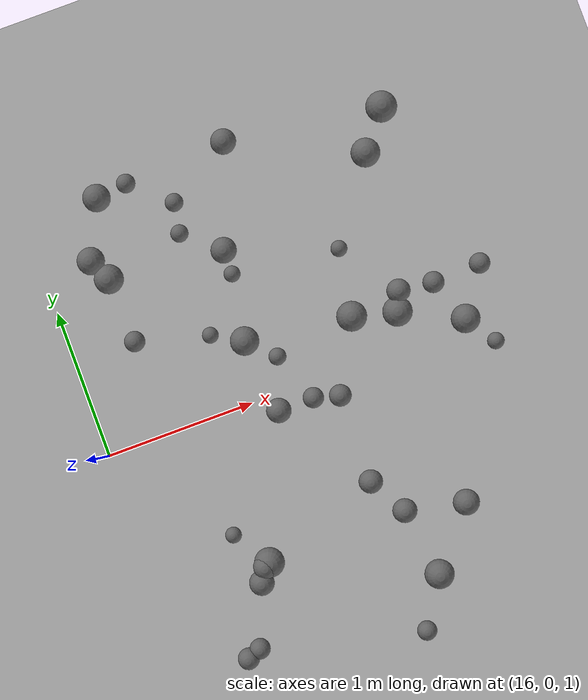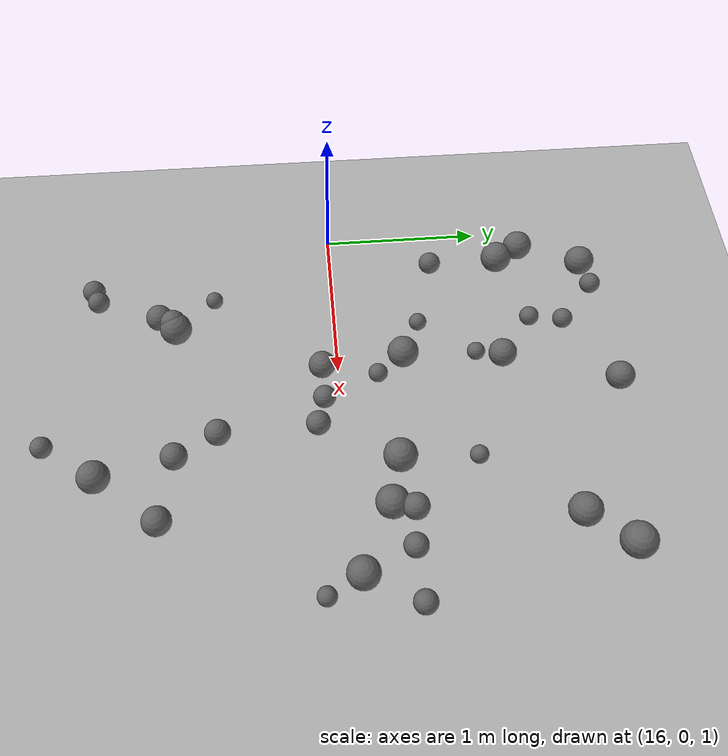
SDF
<sdf version="1.8">
 <world name="extreme_disturbance_parkour">
  <model name="ground_plane">
   <static>true</static>
   <link name="link">
    <collision name="collision">
     <geometry><plane><normal>0 0 1</normal><size>100 100</size></plane></geometry>
     <surface><friction><ode><mu>1.5</mu><mu2>1.5</mu2></ode></friction></surface>
    </collision>
    <visual name="visual">
     <geometry><plane><normal>0 0 1</normal><size>100 100</size></plane></geometry>
     <material><ambient>0.7 0.7 0.7 1</ambient><diffuse>0.7 0.7 0.7 1</diffuse></material>
    </visual>
   </link>
  </model>
  <model name="stone_125">
   <static>true</static>
   <pose>17.5372 -0.1519 1.3933 0.0700 -0.1000 0.0000</pose>
   <link name="link">
    <collision name="collision">
     <geometry><sphere><radius>0.0705</radius></sphere></geometry>
     <surface><friction><ode><mu>100.0</mu><mu2>100.0</mu2></ode></friction></surface>
    </collision>
    <visual name="visual">
     <geometry><sphere><radius>0.0705</radius></sphere></geometry>
     <material><ambient>0.3 0.3 0.3 1</ambient><diffuse>0.4 0.4 0.4 1</diffuse></material>
    </visual>
   </link>
  </model>
  <model name="stone_128">
   <static>true</static>
   <pose>17.8381 0.7030 1.5079 0.0700 -0.1000 0.0000</pose>
   <link name="link">
    <collision name="collision">
     <geometry><sphere><radius>0.0517</radius></sphere></geometry>
     <surface><friction><ode><mu>100.0</mu><mu2>100.0</mu2></ode></friction></surface>
    </collision>
    <visual name="visual">
     <geometry><sphere><radius>0.0517</radius></sphere></geometry>
     <material><ambient>0.3 0.3 0.3 1</ambient><diffuse>0.4 0.4 0.4 1</diffuse></material>
    </visual>
   </link>
  </model>
  <model name="stone_129">
   <static>true</static>
   <pose>16.4161 -1.5286 1.1841 0.0700 -0.1000 0.0000</pose>
   <link name="link">
    <collision name="collision">
     <geometry><sphere><radius>0.0706</radius></sphere></geometry>
     <surface><friction><ode><mu>100.0</mu><mu2>100.0</mu2></ode></friction></surface>
    </collision>
    <visual name="visual">
     <geometry><sphere><radius>0.0706</radius></sphere></geometry>
     <material><ambient>0.3 0.3 0.3 1</ambient><diffuse>0.4 0.4 0.4 1</diffuse></material>
    </visual>
   </link>
  </model>
  <model name="stone_130">
   <static>true</static>
   <pose>16.7372 1.5534 1.4489 0.0700 -0.1000 0.0000</pose>
   <link name="link">
    <collision name="collision">
     <geometry><sphere><radius>0.0604</radius></sphere></geometry>
     <surface><friction><ode><mu>100.0</mu><mu2>100.0</mu2></ode></friction></surface>
    </collision>
    <visual name="visual">
     <geometry><sphere><radius>0.0604</radius></sphere></geometry>
     <material><ambient>0.3 0.3 0.3 1</ambient><diffuse>0.4 0.4 0.4 1</diffuse></material>
    </visual>
   </link>
  </model>
  <model name="stone_132">
   <static>true</static>
   <pose>17.5319 -0.7269 1.3368 0.0700 -0.1000 0.0000</pose>
   <link name="link">
    <collision name="collision">
     <geometry><sphere><radius>0.0765</radius></sphere></geometry>
     <surface><friction><ode><mu>100.0</mu><mu2>100.0</mu2></ode></friction></surface>
    </collision>
    <visual name="visual">
     <geometry><sphere><radius>0.0765</radius></sphere></geometry>
     <material><ambient>0.3 0.3 0.3 1</ambient><diffuse>0.4 0.4 0.4 1</diffuse></material>
    </visual>
   </link>
  </model>
  <model name="stone_133">
   <static>true</static>
   <pose>17.7385 -1.4266 1.2926 0.0700 -0.1000 0.0000</pose>
   <link name="link">
    <collision name="collision">
     <geometry><sphere><radius>0.0943</radius></sphere></geometry>
     <surface><friction><ode><mu>100.0</mu><mu2>100.0</mu2></ode></friction></surface>
    </collision>
    <visual name="visual">
     <geometry><sphere><radius>0.0943</radius></sphere></geometry>
     <material><ambient>0.3 0.3 0.3 1</ambient><diffuse>0.4 0.4 0.4 1</diffuse></material>
    </visual>
   </link>
  </model>
  <model name="stone_138">
   <static>true</static>
   <pose>18.0961 0.3327 1.4797 0.0700 -0.1000 0.0000</pose>
   <link name="link">
    <collision name="collision">
     <geometry><sphere><radius>0.0742</radius></sphere></geometry>
     <surface><friction><ode><mu>100.0</mu><mu2>100.0</mu2></ode></friction></surface>
    </collision>
    <visual name="visual">
     <geometry><sphere><radius>0.0742</radius></sphere></geometry>
     <material><ambient>0.3 0.3 0.3 1</ambient><diffuse>0.4 0.4 0.4 1</diffuse></material>
    </visual>
   </link>
  </model>
  <model name="stone_139">
   <static>true</static>
   <pose>16.9438 1.1440 1.4445 0.0700 -0.1000 0.0000</pose>
   <link name="link">
    <collision name="collision">
     <geometry><sphere><radius>0.0567</radius></sphere></geometry>
     <surface><friction><ode><mu>100.0</mu><mu2>100.0</mu2></ode></friction></surface>
    </collision>
    <visual name="visual">
     <geometry><sphere><radius>0.0567</radius></sphere></geometry>
     <material><ambient>0.3 0.3 0.3 1</ambient><diffuse>0.4 0.4 0.4 1</diffuse></material>
    </visual>
   </link>
  </model>
  <model name="stone_141">
   <static>true</static>
   <pose>17.3973 1.5821 1.4847 0.0700 -0.1000 0.0000</pose>
   <link name="link">
    <collision name="collision">
     <geometry><sphere><radius>0.0809</radius></sphere></geometry>
     <surface><friction><ode><mu>100.0</mu><mu2>100.0</mu2></ode></friction></surface>
    </collision>
    <visual name="visual">
     <geometry><sphere><radius>0.0809</radius></sphere></geometry>
     <material><ambient>0.3 0.3 0.3 1</ambient><diffuse>0.4 0.4 0.4 1</diffuse></material>
    </visual>
   </link>
  </model>
  <model name="stone_142">
   <static>true</static>
   <pose>17.0930 0.3772 1.3659 0.0700 -0.1000 0.0000</pose>
   <link name="link">
    <collision name="collision">
     <geometry><sphere><radius>0.0926</radius></sphere></geometry>
     <surface><friction><ode><mu>100.0</mu><mu2>100.0</mu2></ode></friction></surface>
    </collision>
    <visual name="visual">
     <geometry><sphere><radius>0.0926</radius></sphere></geometry>
     <material><ambient>0.3 0.3 0.3 1</ambient><diffuse>0.4 0.4 0.4 1</diffuse></material>
    </visual>
   </link>
  </model>
  <model name="stone_144">
   <static>true</static>
   <pose>18.3139 0.3057 1.5037 0.0700 -0.1000 0.0000</pose>
   <link name="link">
    <collision name="collision">
     <geometry><sphere><radius>0.0674</radius></sphere></geometry>
     <surface><friction><ode><mu>100.0</mu><mu2>100.0</mu2></ode></friction></surface>
    </collision>
    <visual name="visual">
     <geometry><sphere><radius>0.0674</radius></sphere></geometry>
     <material><ambient>0.3 0.3 0.3 1</ambient><diffuse>0.4 0.4 0.4 1</diffuse></material>
    </visual>
   </link>
  </model>
  <model name="stone_148">
   <static>true</static>
   <pose>17.7744 0.2873 1.4189 0.0700 -0.1000 0.0000</pose>
   <link name="link">
    <collision name="collision">
     <geometry><sphere><radius>0.0958</radius></sphere></geometry>
     <surface><friction><ode><mu>100.0</mu><mu2>100.0</mu2></ode></friction></surface>
    </collision>
    <visual name="visual">
     <geometry><sphere><radius>0.0958</radius></sphere></geometry>
     <material><ambient>0.3 0.3 0.3 1</ambient><diffuse>0.4 0.4 0.4 1</diffuse></material>
    </visual>
   </link>
  </model>
  <model name="stone_149">
   <static>true</static>
   <pose>17.3740 -0.1066 1.3929 0.0700 -0.1000 0.0000</pose>
   <link name="link">
    <collision name="collision">
     <geometry><sphere><radius>0.0663</radius></sphere></geometry>
     <surface><friction><ode><mu>100.0</mu><mu2>100.0</mu2></ode></friction></surface>
    </collision>
    <visual name="visual">
     <geometry><sphere><radius>0.0663</radius></sphere></geometry>
     <material><ambient>0.3 0.3 0.3 1</ambient><diffuse>0.4 0.4 0.4 1</diffuse></material>
    </visual>
   </link>
  </model>
  <model name="stone_150">
   <static>true</static>
   <pose>17.1665 0.9540 1.4162 0.0700 -0.1000 0.0000</pose>
   <link name="link">
    <collision name="collision">
     <geometry><sphere><radius>0.0824</radius></sphere></geometry>
     <surface><friction><ode><mu>100.0</mu><mu2>100.0</mu2></ode></friction></surface>
    </collision>
    <visual name="visual">
     <geometry><sphere><radius>0.0824</radius></sphere></geometry>
     <material><ambient>0.3 0.3 0.3 1</ambient><diffuse>0.4 0.4 0.4 1</diffuse></material>
    </visual>
   </link>
  </model>
  <model name="stone_169">
   <static>true</static>
   <pose>16.5063 -1.4921 1.1936 0.0700 -0.1000 0.0000</pose>
   <link name="link">
    <collision name="collision">
     <geometry><sphere><radius>0.0670</radius></sphere></geometry>
     <surface><friction><ode><mu>100.0</mu><mu2>100.0</mu2></ode></friction></surface>
    </collision>
    <visual name="visual">
     <geometry><sphere><radius>0.0670</radius></sphere></geometry>
     <material><ambient>0.3 0.3 0.3 1</ambient><diffuse>0.4 0.4 0.4 1</diffuse></material>
    </visual>
   </link>
  </model>
  <model name="stone_170">
   <static>true</static>
   <pose>17.1642 0.7920 1.4467 0.0700 -0.1000 0.0000</pose>
   <link name="link">
    <collision name="collision">
     <geometry><sphere><radius>0.0523</radius></sphere></geometry>
     <surface><friction><ode><mu>100.0</mu><mu2>100.0</mu2></ode></friction></surface>
    </collision>
    <visual name="visual">
     <geometry><sphere><radius>0.0523</radius></sphere></geometry>
     <material><ambient>0.3 0.3 0.3 1</ambient><diffuse>0.4 0.4 0.4 1</diffuse></material>
    </visual>
   </link>
  </model>
  <model name="stone_172">
   <static>true</static>
   <pose>18.5464 -0.1673 1.5136 0.0700 -0.1000 0.0000</pose>
   <link name="link">
    <collision name="collision">
     <geometry><sphere><radius>0.0531</radius></sphere></geometry>
     <surface><friction><ode><mu>100.0</mu><mu2>100.0</mu2></ode></friction></surface>
    </collision>
    <visual name="visual">
     <geometry><sphere><radius>0.0531</radius></sphere></geometry>
     <material><ambient>0.3 0.3 0.3 1</ambient><diffuse>0.4 0.4 0.4 1</diffuse></material>
    </visual>
   </link>
  </model>
  <model name="stone_173">
   <static>true</static>
   <pose>16.6631 -1.1004 1.2188 0.0700 -0.1000 0.0000</pose>
   <link name="link">
    <collision name="collision">
     <geometry><sphere><radius>0.0813</radius></sphere></geometry>
     <surface><friction><ode><mu>100.0</mu><mu2>100.0</mu2></ode></friction></surface>
    </collision>
    <visual name="visual">
     <geometry><sphere><radius>0.0813</radius></sphere></geometry>
     <material><ambient>0.3 0.3 0.3 1</ambient><diffuse>0.4 0.4 0.4 1</diffuse></material>
    </visual>
   </link>
  </model>
  <model name="stone_178">
   <static>true</static>
   <pose>16.5316 1.5418 1.4005 0.0700 -0.1000 0.0000</pose>
   <link name="link">
    <collision name="collision">
     <geometry><sphere><radius>0.0884</radius></sphere></geometry>
     <surface><friction><ode><mu>100.0</mu><mu2>100.0</mu2></ode></friction></surface>
    </collision>
    <visual name="visual">
     <geometry><sphere><radius>0.0884</radius></sphere></geometry>
     <material><ambient>0.3 0.3 0.3 1</ambient><diffuse>0.4 0.4 0.4 1</diffuse></material>
    </visual>
   </link>
  </model>
  <model name="stone_182">
   <static>true</static>
   <pose>16.7534 -0.9951 1.2220 0.0700 -0.1000 0.0000</pose>
   <link name="link">
    <collision name="collision">
     <geometry><sphere><radius>0.0981</radius></sphere></geometry>
     <surface><friction><ode><mu>100.0</mu><mu2>100.0</mu2></ode></friction></surface>
    </collision>
    <visual name="visual">
     <geometry><sphere><radius>0.0981</radius></sphere></geometry>
     <material><ambient>0.3 0.3 0.3 1</ambient><diffuse>0.4 0.4 0.4 1</diffuse></material>
    </visual>
   </link>
  </model>
  <model name="stone_183">
   <static>true</static>
   <pose>16.4408 0.6170 1.3325 0.0700 -0.1000 0.0000</pose>
   <link name="link">
    <collision name="collision">
     <geometry><sphere><radius>0.0669</radius></sphere></geometry>
     <surface><friction><ode><mu>100.0</mu><mu2>100.0</mu2></ode></friction></surface>
    </collision>
    <visual name="visual">
     <geometry><sphere><radius>0.0669</radius></sphere></geometry>
     <material><ambient>0.3 0.3 0.3 1</ambient><diffuse>0.4 0.4 0.4 1</diffuse></material>
    </visual>
   </link>
  </model>
  <model name="stone_189">
   <static>true</static>
   <pose>16.9792 1.3358 1.4555 0.0700 -0.1000 0.0000</pose>
   <link name="link">
    <collision name="collision">
     <geometry><sphere><radius>0.0580</radius></sphere></geometry>
     <surface><friction><ode><mu>100.0</mu><mu2>100.0</mu2></ode></friction></surface>
    </collision>
    <visual name="visual">
     <geometry><sphere><radius>0.0580</radius></sphere></geometry>
     <material><ambient>0.3 0.3 0.3 1</ambient><diffuse>0.4 0.4 0.4 1</diffuse></material>
    </visual>
   </link>
  </model>
  <model name="stone_192">
   <static>true</static>
   <pose>18.1946 1.1999 1.5429 0.0700 -0.1000 0.0000</pose>
   <link name="link">
    <collision name="collision">
     <geometry><sphere><radius>0.0911</radius></sphere></geometry>
     <surface><friction><ode><mu>100.0</mu><mu2>100.0</mu2></ode></friction></surface>
    </collision>
    <visual name="visual">
     <geometry><sphere><radius>0.0911</radius></sphere></geometry>
     <material><ambient>0.3 0.3 0.3 1</ambient><diffuse>0.4 0.4 0.4 1</diffuse></material>
    </visual>
   </link>
  </model>
  <model name="stone_194">
   <static>true</static>
   <pose>18.0465 -1.0522 1.3679 0.0700 -0.1000 0.0000</pose>
   <link name="link">
    <collision name="collision">
     <geometry><sphere><radius>0.0837</radius></sphere></geometry>
     <surface><friction><ode><mu>100.0</mu><mu2>100.0</mu2></ode></friction></surface>
    </collision>
    <visual name="visual">
     <geometry><sphere><radius>0.0837</radius></sphere></geometry>
     <material><ambient>0.3 0.3 0.3 1</ambient><diffuse>0.4 0.4 0.4 1</diffuse></material>
    </visual>
   </link>
  </model>
  <model name="stone_195">
   <static>true</static>
   <pose>17.1435 -0.1072 1.3569 0.0700 -0.1000 0.0000</pose>
   <link name="link">
    <collision name="collision">
     <geometry><sphere><radius>0.0797</radius></sphere></geometry>
     <surface><friction><ode><mu>100.0</mu><mu2>100.0</mu2></ode></friction></surface>
    </collision>
    <visual name="visual">
     <geometry><sphere><radius>0.0797</radius></sphere></geometry>
     <material><ambient>0.3 0.3 0.3 1</ambient><diffuse>0.4 0.4 0.4 1</diffuse></material>
    </visual>
   </link>
  </model>
  <model name="stone_196">
   <static>true</static>
   <pose>17.2520 0.2120 1.4152 0.0700 -0.1000 0.0000</pose>
   <link name="link">
    <collision name="collision">
     <geometry><sphere><radius>0.0555</radius></sphere></geometry>
     <surface><friction><ode><mu>100.0</mu><mu2>100.0</mu2></ode></friction></surface>
    </collision>
    <visual name="visual">
     <geometry><sphere><radius>0.0555</radius></sphere></geometry>
     <material><ambient>0.3 0.3 0.3 1</ambient><diffuse>0.4 0.4 0.4 1</diffuse></material>
    </visual>
   </link>
  </model>
  <model name="stone_203">
   <static>true</static>
   <pose>16.9040 0.4846 1.3857 0.0700 -0.1000 0.0000</pose>
   <link name="link">
    <collision name="collision">
     <geometry><sphere><radius>0.0521</radius></sphere></geometry>
     <surface><friction><ode><mu>100.0</mu><mu2>100.0</mu2></ode></friction></surface>
    </collision>
    <visual name="visual">
     <geometry><sphere><radius>0.0521</radius></sphere></geometry>
     <material><ambient>0.3 0.3 0.3 1</ambient><diffuse>0.4 0.4 0.4 1</diffuse></material>
    </visual>
   </link>
  </model>
  <model name="stone_207">
   <static>true</static>
   <pose>16.7207 -1.0100 1.2443 0.0700 -0.1000 0.0000</pose>
   <link name="link">
    <collision name="collision">
     <geometry><sphere><radius>0.0789</radius></sphere></geometry>
     <surface><friction><ode><mu>100.0</mu><mu2>100.0</mu2></ode></friction></surface>
    </collision>
    <visual name="visual">
     <geometry><sphere><radius>0.0789</radius></sphere></geometry>
     <material><ambient>0.3 0.3 0.3 1</ambient><diffuse>0.4 0.4 0.4 1</diffuse></material>
    </visual>
   </link>
  </model>
  <model name="stone_211">
   <static>true</static>
   <pose>18.6142 0.3148 1.5453 0.0700 -0.1000 0.0000</pose>
   <link name="link">
    <collision name="collision">
     <geometry><sphere><radius>0.0648</radius></sphere></geometry>
     <surface><friction><ode><mu>100.0</mu><mu2>100.0</mu2></ode></friction></surface>
    </collision>
    <visual name="visual">
     <geometry><sphere><radius>0.0648</radius></sphere></geometry>
     <material><ambient>0.3 0.3 0.3 1</ambient><diffuse>0.4 0.4 0.4 1</diffuse></material>
    </visual>
   </link>
  </model>
  <model name="stone_212">
   <static>true</static>
   <pose>18.4280 0.0267 1.4685 0.0700 -0.1000 0.0000</pose>
   <link name="link">
    <collision name="collision">
     <geometry><sphere><radius>0.0910</radius></sphere></geometry>
     <surface><friction><ode><mu>100.0</mu><mu2>100.0</mu2></ode></friction></surface>
    </collision>
    <visual name="visual">
     <geometry><sphere><radius>0.0910</radius></sphere></geometry>
     <material><ambient>0.3 0.3 0.3 1</ambient><diffuse>0.4 0.4 0.4 1</diffuse></material>
    </visual>
   </link>
  </model>
  <model name="stone_216">
   <static>true</static>
   <pose>18.3817 1.4288 1.5672 0.0700 -0.1000 0.0000</pose>
   <link name="link">
    <collision name="collision">
     <geometry><sphere><radius>0.0973</radius></sphere></geometry>
     <surface><friction><ode><mu>100.0</mu><mu2>100.0</mu2></ode></friction></surface>
    </collision>
    <visual name="visual">
     <geometry><sphere><radius>0.0973</radius></sphere></geometry>
     <material><ambient>0.3 0.3 0.3 1</ambient><diffuse>0.4 0.4 0.4 1</diffuse></material>
    </visual>
   </link>
  </model>
  <model name="stone_223">
   <static>true</static>
   <pose>16.6024 -0.7472 1.2840 0.0700 -0.1000 0.0000</pose>
   <link name="link">
    <collision name="collision">
     <geometry><sphere><radius>0.0525</radius></sphere></geometry>
     <surface><friction><ode><mu>100.0</mu><mu2>100.0</mu2></ode></friction></surface>
    </collision>
    <visual name="visual">
     <geometry><sphere><radius>0.0525</radius></sphere></geometry>
     <material><ambient>0.3 0.3 0.3 1</ambient><diffuse>0.4 0.4 0.4 1</diffuse></material>
    </visual>
   </link>
  </model>
  <model name="stone_226">
   <static>true</static>
   <pose>17.6683 -0.9706 1.3486 0.0700 -0.1000 0.0000</pose>
   <link name="link">
    <collision name="collision">
     <geometry><sphere><radius>0.0777</radius></sphere></geometry>
     <surface><friction><ode><mu>100.0</mu><mu2>100.0</mu2></ode></friction></surface>
    </collision>
    <visual name="visual">
     <geometry><sphere><radius>0.0777</radius></sphere></geometry>
     <material><ambient>0.3 0.3 0.3 1</ambient><diffuse>0.4 0.4 0.4 1</diffuse></material>
    </visual>
   </link>
  </model>
  <model name="stone_228">
   <static>true</static>
   <pose>16.4232 1.0450 1.3332 0.0700 -0.1000 0.0000</pose>
   <link name="link">
    <collision name="collision">
     <geometry><sphere><radius>0.0946</radius></sphere></geometry>
     <surface><friction><ode><mu>100.0</mu><mu2>100.0</mu2></ode></friction></surface>
    </collision>
    <visual name="visual">
     <geometry><sphere><radius>0.0946</radius></sphere></geometry>
     <material><ambient>0.3 0.3 0.3 1</ambient><diffuse>0.4 0.4 0.4 1</diffuse></material>
    </visual>
   </link>
  </model>
  <model name="stone_232">
   <static>true</static>
   <pose>16.3576 1.1883 1.3566 0.0700 -0.1000 0.0000</pose>
   <link name="link">
    <collision name="collision">
     <geometry><sphere><radius>0.0887</radius></sphere></geometry>
     <surface><friction><ode><mu>100.0</mu><mu2>100.0</mu2></ode></friction></surface>
    </collision>
    <visual name="visual">
     <geometry><sphere><radius>0.0887</radius></sphere></geometry>
     <material><ambient>0.3 0.3 0.3 1</ambient><diffuse>0.4 0.4 0.4 1</diffuse></material>
    </visual>
   </link>
  </model>
  <model name="stone_236">
   <static>true</static>
   <pose>17.5408 -1.7317 1.2961 0.0700 -0.1000 0.0000</pose>
   <link name="link">
    <collision name="collision">
     <geometry><sphere><radius>0.0630</radius></sphere></geometry>
     <surface><friction><ode><mu>100.0</mu><mu2>100.0</mu2></ode></friction></surface>
    </collision>
    <visual name="visual">
     <geometry><sphere><radius>0.0630</radius></sphere></geometry>
     <material><ambient>0.3 0.3 0.3 1</ambient><diffuse>0.4 0.4 0.4 1</diffuse></material>
    </visual>
   </link>
  </model>
  <model name="stone_239">
   <static>true</static>
   <pose>18.0499 0.2146 1.4447 0.0700 -0.1000 0.0000</pose>
   <link name="link">
    <collision name="collision">
     <geometry><sphere><radius>0.0936</radius></sphere></geometry>
     <surface><friction><ode><mu>100.0</mu><mu2>100.0</mu2></ode></friction></surface>
    </collision>
    <visual name="visual">
     <geometry><sphere><radius>0.0936</radius></sphere></geometry>
     <material><ambient>0.3 0.3 0.3 1</ambient><diffuse>0.4 0.4 0.4 1</diffuse></material>
    </visual>
   </link>
  </model>
 </world>
</sdf>
